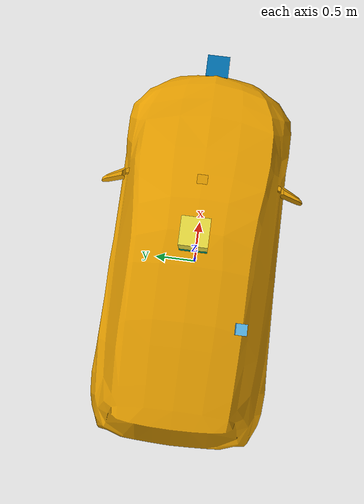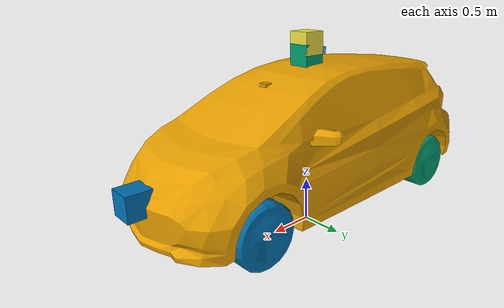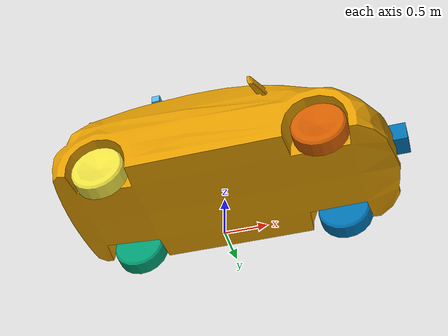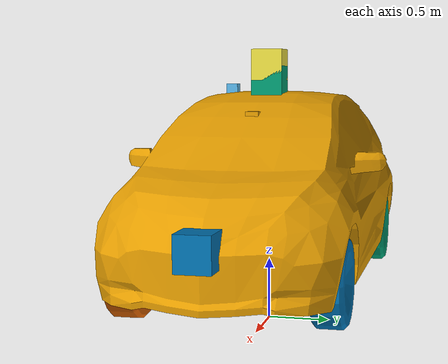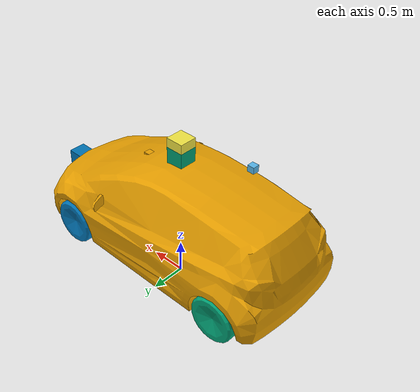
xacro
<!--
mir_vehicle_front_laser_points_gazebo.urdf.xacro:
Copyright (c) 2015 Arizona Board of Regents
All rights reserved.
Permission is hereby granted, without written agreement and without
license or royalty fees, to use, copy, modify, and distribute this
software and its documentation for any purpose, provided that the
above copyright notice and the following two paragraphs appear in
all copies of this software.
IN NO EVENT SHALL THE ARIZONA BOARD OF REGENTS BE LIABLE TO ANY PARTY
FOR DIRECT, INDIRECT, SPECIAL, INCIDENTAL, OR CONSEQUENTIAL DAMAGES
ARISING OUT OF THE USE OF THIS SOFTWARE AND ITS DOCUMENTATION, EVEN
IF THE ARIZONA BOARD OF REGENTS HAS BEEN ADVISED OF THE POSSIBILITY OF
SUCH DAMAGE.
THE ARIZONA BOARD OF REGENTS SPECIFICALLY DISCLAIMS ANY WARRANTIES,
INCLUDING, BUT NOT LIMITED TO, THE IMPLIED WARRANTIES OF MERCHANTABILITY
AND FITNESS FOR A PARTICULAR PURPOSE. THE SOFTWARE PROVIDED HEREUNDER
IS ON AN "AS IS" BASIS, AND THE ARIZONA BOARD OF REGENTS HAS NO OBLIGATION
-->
<?xml version="1.0"?>
<robot xmlns:xacro="http://www.ros.org/wiki/xacro" name="bulldogbolt">

<arg name="robot_name" default="bulldogbolt" />

<!-- Necessary includes: Properties -->
<xacro:include filename="$(find mir_vehicle_description)/urdf/bulldogbolt/properties.urdf.xacro"/>

<!-- Necessary includes -->
<xacro:include filename="$(find mir_vehicle_description)/urdf/bulldogbolt/structure.urdf.xacro" />

<!-- Bolt-on sensors go here -->
<xacro:include filename="$(find mir_vehicle_description)/urdf/$(arg robot_name)/sensors.urdf.xacro" />

<xacro:include filename="$(find mir_vehicle_description)/urdf/mir_vehicle_gazebo.urdf.xacro" />

</robot>

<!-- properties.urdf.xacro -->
<robot xmlns:xacro="http://www.ros.org/wiki/xacro"> <!-- name="properties" -->

<xacro:arg name="camera_left" default="true"/>
<xacro:arg name="camera_right" default="true"/>
<xacro:arg name="velodyne_points" default="true"/>
<xacro:arg name="front_laser_points" default="true"/>

<xacro:property name="PI" value="3.1415926835897931"/>
<xacro:property name="base_height" value="1.1159"/>
<xacro:property name="base_mass" value="1562"/>
<xacro:property name="base_mass_ixx" value="566"/>
<xacro:property name="base_mass_iyy" value="1880"/>
<xacro:property name="base_mass_izz" value="2045"/>
<xacro:property name="base_mass_ixz" value="48"/>
<xacro:property name="tyre_x" value="1.30"/>
<xacro:property name="tyre_y" value="0.765"/>
<xacro:property name="tyre_length" value="0.215"/>
<xacro:property name="tyre_r" value="0.66"/>
<xacro:property name="tyre_radius" value="0.3235"/>
<xacro:property name="tyre_mass" value="10"/>
<xacro:property name="tyre_mass_ixx" value="0.305583"/>
<xacro:property name="tyre_mass_iyy" value="0.305583"/>
<xacro:property name="tyre_mass_izz" value="0.5445"/>
<xacro:property name="car_height" value="1.6"/>
<xacro:property name="car_to_bumper" value="2.085"/>
<xacro:property name="front_bumper_height" value="${car_height/2}"/>
<xacro:property name="sensor_box" value="0.25"/>
<xacro:property name="sensor_box2" value="0.31"/>
<xacro:property name="camera_box" value="0.1"/>
<xacro:property name="tyre_height" value="-0.696"/>
<xacro:property name="str_length" value="0.01"/>
<xacro:property name="str_radius" value="0.1"/>
<xacro:property name="str_angle" value="0.6"/>
<xacro:property name="car_width" value="1.3"/>
<xacro:property name="front_laser_points" value="$(arg front_laser_points)"/>
<xacro:property name="velodyne_points" value="$(arg velodyne_points)"/>
<xacro:property name="camera_right" value="$(arg camera_right)"/>
<xacro:property name="camera_left" value="$(arg camera_left)"/>
<xacro:property name="tyre_origin">
    <origin xyz="0 0 0" rpy="${PI/2} 0 0"/>
</xacro:property>

</robot>

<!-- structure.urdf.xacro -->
<robot xmlns:xacro="http://www.ros.org/wiki/xacro"> <!-- name="structure" -->

<xacro:arg name="robot_name" default="bulldogbolt"/>

<!-- Car Body -->

<link name="base_link">
    <collision>
        <origin xyz="0 0 ${base_height}" rpy="0 0 0"/>
        <geometry>
            <box size="2.62 ${car_width} ${car_height}"/>
        </geometry>
    </collision>
    <visual>
        <!-- origin xyz="-0.25 0 ${base_height + 0.05}" rpy="0 0 0"/ -->
        <origin xyz="0.05 0 0.3235" rpy="1.570796 0 1.570796"/>
        <geometry>
            <!-- mesh filename="package://mir_vehicle/meshes/ford_escape_no_wheels_2.dae"/ -->
            <mesh filename="package://mir_vehicle_description/meshes/$(arg robot_name)/body.dae" scale="0.0383 0.0383 0.0383" />
        </geometry>
    </visual>
</link>

<joint name="inertial_joint" type="fixed">
    <parent link="base_link"/>
    <child link="main_mass"/>
    <origin xyz="0 0 0" rpy="0 0 0"/>
</joint>

<link name="main_mass" type="fixed">
    <parent link="inertial_joint"/>
    <inertial>
        <origin xyz="0 0 ${base_height}" rpy="0 0 0"/>
        <mass value="${base_mass}"/>
        <inertia
            ixx="${base_mass_ixx}"  ixy="0.000000" ixz="${base_mass_ixz}"
            iyy="${base_mass_iyy}" iyz="0.000000"
            izz="${base_mass_izz}"/>
    </inertial>
</link>

<!-- Wheels -->

<!-- Back Left Wheel -->

<joint name="back_left_wheel_joint" type="continuous">
    <parent link="base_link"/>
    <child link="back_left_wheel_link"/>
    <origin xyz="${-tyre_x} ${tyre_y} 0.608" rpy="0 0 0"/>
    <axis xyz="0 1 0"/>
    <dynamics damping="0.1"/>
    <limit effort="10000" velocity="100" />
    <joint_properties damping="0.0" friction="0.0" />
</joint>

<link name="back_left_wheel_link">
    <collision>
        <xacro:insert_block name="tyre_origin"/>
        <geometry>
            <cylinder length="${tyre_length}" radius="${tyre_radius}"/>
        </geometry>
    </collision>

    <visual>
        <origin xyz="-0.3065 -0.765 1.372" rpy="0 0 ${-PI/2}"/>
        <geometry>
            <mesh filename="package://mir_vehicle_description/meshes/$(arg robot_name)/wheel.dae" scale="0.0383 0.0383 0.0383"/>
        </geometry>
    </visual>

    <inertial>
        <origin xyz="0 0 0" rpy="0 0 0"/>
        <mass value="${tyre_mass}"/>
        <inertia
            ixx="${tyre_mass_ixx}"  ixy="0.000000"  ixz="0.000000"
            iyy="${tyre_mass_iyy}"  iyz="0.000000"
            izz="${tyre_mass_izz}"/>
    </inertial>
</link>

<!-- Back Right Wheel -->

<joint name="back_right_wheel_joint" type="continuous">
    <parent link="base_link"/>
    <child link="back_right_wheel_link"/>
    <origin xyz="${-tyre_x} ${-tyre_y} 0.608" rpy="0 0 0"/>
    <axis xyz="0 1 0"/>
    <dynamics damping="0.1"/>
    <limit effort="10000" velocity="100" />
    <joint_properties damping="0.0" friction="0.0" />
</joint>

<link name="back_right_wheel_link">
    <collision>
        <xacro:insert_block name="tyre_origin"/>
        <geometry>
            <cylinder length="${tyre_length}" radius="${tyre_radius}"/>
        </geometry>
    </collision>

    <visual>
        <origin xyz="0.3065 0.765 1.372" rpy="0 0 ${PI/2}"/>
        <geometry>
            <mesh filename="package://mir_vehicle_description/meshes/$(arg robot_name)/wheel.dae" scale="0.0383 0.0383 0.0383"/>
        </geometry>
    </visual>

    <inertial>
        <origin xyz="0 0 0" rpy="0 0 0"/>
        <mass value="${tyre_mass}"/>
        <inertia
            ixx="${tyre_mass_ixx}"  ixy="0.000000"  ixz="0.000000"
            iyy="${tyre_mass_iyy}"  iyz="0.000000"
            izz="${tyre_mass_izz}"/>
    </inertial>
</link>

<!-- Front Left Wheel -->

<joint name="front_left_wheel_joint" type="continuous">
    <parent link="front_left_steering_link"/>
    <child link="front_left_wheel_link"/>
    <origin xyz="0 ${str_length/2 + tyre_length/2} 0" rpy="0 0 0"/>
    <axis xyz="0 1 0"/>

    <dynamics damping="0.1"/>
    <limit effort="10000" velocity="100" />
    <joint_properties damping="0.0" friction="0.0" />
</joint>

<link name="front_left_wheel_link">
    <!-- ?? parent link="front_left_wheel_joint"/ -->
    <collision>
        <origin xyz="0 0 0" rpy="${PI/2} 0 0"/>
        <geometry>
             <cylinder length="${tyre_length}" radius="${tyre_radius}"/>
        </geometry>
    </collision>

    <visual>
        <origin xyz="-0.3065 -0.765 1.372" rpy="0 0 ${-PI/2}"/>
        <geometry>
            <mesh filename="package://mir_vehicle_description/meshes/$(arg robot_name)/wheel.dae" scale="0.0383 0.0383 0.0383"/>
        </geometry>
     </visual>

    <inertial>
        <origin xyz="0 0 0" rpy="0 0 0"/>
        <mass value="${tyre_mass}"/>
        <inertia
            ixx="${tyre_mass_ixx}"  ixy="0.000000"  ixz="0.000000"
            iyy="${tyre_mass_iyy}"  iyz="0.000000"
            izz="${tyre_mass_izz}"/>
    </inertial>
</link>

<!-- Front Right Wheel -->

<joint name="front_right_wheel_joint" type="continuous">
    <parent link="front_right_steering_link"/>
    <child link="front_right_wheel_link"/>
    <origin xyz="0 ${-str_length/2 - tyre_length/2} 0" rpy="0 0 0"/>
    <axis xyz="0 1 0"/>
    <dynamics damping="0.1"/>
    <limit effort="10000" velocity="100" />
    <joint_properties damping="0.0" friction="0.0" />
</joint>

<link name="front_right_wheel_link">
    <collision>
        <xacro:insert_block name="tyre_origin"/>
        <geometry>
            <cylinder length="${tyre_length}" radius="${tyre_radius}"/>
        </geometry>
    </collision>

    <visual>
        <origin xyz="0.3065 0.765 1.372" rpy="0 0 ${PI/2}"/>
        <geometry>
            <mesh filename="package://mir_vehicle_description/meshes/$(arg robot_name)/wheel.dae" scale="0.0383 0.0383 0.0383"/>
        </geometry>
    </visual>

    <inertial>
        <origin xyz="0 0 0" rpy="0 0 0"/>
        <mass value="${tyre_mass}"/>
    <inertia
        ixx="${tyre_mass_ixx}"  ixy="0.000000"  ixz="0.000000"
        iyy="${tyre_mass_iyy}"  iyz="0.000000"
        izz="${tyre_mass_izz}"/>
    </inertial>
</link>

<!-- Front Left Steering -->

<joint name="front_left_steering_joint" type="revolute">
    <parent link="base_link"/>
    <child link="front_left_steering_link"/>
    <origin xyz="${tyre_x} ${car_width/2 + str_length/2} 0.608" rpy="0 0 0"/>
    <axis xyz="0 0 1"/>
    <limit effort="1000.0" lower="${-str_angle}" upper="${str_angle}" velocity="0.5"/>
</joint>

<link name="front_left_steering_link">
    <!-- ?? parent link="base_link"/ -->
    <collision>
        <xacro:insert_block name="tyre_origin"/>
        <geometry>
            <cylinder length="${str_length}" radius="${str_radius}"/>
        </geometry>
    </collision>

    <visual>
        <xacro:insert_block name="tyre_origin"/>
        <geometry>
            <cylinder length="${str_length}" radius="${str_radius}"/>
        </geometry>
    </visual>

    <inertial>
        <origin xyz="0 0 0" rpy="0 0 0"/>
        <mass value="10.00"/>
        <inertia
            ixx="0.4"  ixy="0.000000"  ixz="0.000000"
            iyy="0.6"  iyz="0.000000"
            izz="0.4"/>
    </inertial>
</link>

<!-- Front Right Steering -->

<joint name="front_right_steering_joint" type="revolute">
    <parent link="base_link"/>
    <child link="front_right_steering_link"/>
    <origin xyz="${tyre_x} ${-car_width/2 - str_length/2} 0.608" rpy="0 0 0"/>
    <axis xyz="0 0 1"/>
    <limit effort="1000.0" lower="${-str_angle}" upper="${str_angle}" velocity="0.5"/>
</joint>

<link name="front_right_steering_link">
    <collision>
        <xacro:insert_block name="tyre_origin"/>
        <geometry>
            <cylinder length="${str_length}" radius="${str_radius}"/>
        </geometry>
    </collision>

    <visual>
        <xacro:insert_block name="tyre_origin"/>
        <geometry>
            <cylinder length="${str_length}" radius="${str_radius}"/>
        </geometry>
    </visual>

    <inertial>
        <origin xyz="0 0 0" rpy="0 0 0"/>
        <mass value="10.00"/>
        <inertia
            ixx="0.4"  ixy="0.000000"  ixz="0.000000"
            iyy="0.6"  iyz="0.000000"
            izz="0.4"/>
    </inertial>
</link>

<!-- motors and transmissions for the wheels -->

<transmission name="tran1">
    <type>transmission_interface/SimpleTransmission</type>
    <!-- RWD -->
    <!--joint name="back_left_wheel_joint"-->
    <!-- FWD -->
    <joint name="front_left_wheel_joint">
        <hardwareInterface>VelocityJointInterface</hardwareInterface>
    </joint>
    <actuator name="motor1">
        <hardwareInterface>VelocityJointInterface</hardwareInterface>
        <mechanicalReduction>1</mechanicalReduction>
    </actuator>
</transmission>

<transmission name="tran2">
    <type>transmission_interface/SimpleTransmission</type>
    <!-- RWD -->
    <!--joint name="back_right_wheel_joint"-->
    <!-- FWD -->
    <joint name="front_right_wheel_joint">
        <hardwareInterface>VelocityJointInterface</hardwareInterface>
    </joint>
    <actuator name="motor2">
        <hardwareInterface>VelocityJointInterface</hardwareInterface>
        <mechanicalReduction>1</mechanicalReduction>
    </actuator>
</transmission>

<transmission name="rack_and_pinion_left">
    <type>transmission_interface/SimpleTransmission</type>
        <joint name="front_left_steering_joint">
        <hardwareInterface>PositionJointInterface</hardwareInterface>
    </joint>
    <actuator name="eps_left">
        <hardwareInterface>PositionJointInterface</hardwareInterface>
        <mechanicalReduction>1</mechanicalReduction>
    </actuator>
</transmission>

<transmission name="rack_and_pinion_right">
    <type>transmission_interface/SimpleTransmission</type>
        <joint name="front_right_steering_joint">
        <hardwareInterface>PositionJointInterface</hardwareInterface>
    </joint>
    <actuator name="eps_right">
        <hardwareInterface>PositionJointInterface</hardwareInterface>
        <mechanicalReduction>1</mechanicalReduction>
    </actuator>
</transmission>

</robot>

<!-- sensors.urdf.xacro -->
<robot xmlns:xacro="http://www.ros.org/wiki/xacro"> <!-- name="sensors" -->

<xacro:arg name="camera_left" default="true"/>
<xacro:arg name="camera_right" default="true"/>
<xacro:arg name="velodyne_points" default="true"/>
<xacro:arg name="front_laser_points" default="true"/>

<xacro:if value="${front_laser_points}">
    <xacro:include filename="$(find mir_vehicle_description)/urdf/mir_vehicle_front_laser_points_gazebo.urdf.xacro"/>
</xacro:if>

<xacro:if value="${velodyne_points}">
    <!-- You can pass parameters in order to change the max/min
        horizontal angles of the velodyne sensors. These are interpreted
        in the velodyne_points gazebo file -->
    <xacro:arg name="velodyne_min_angle" default="-0.4"/>
    <xacro:arg name="velodyne_max_angle" default="0.4"/>
    <xacro:property name="velodyne_min_angle" value="$(arg velodyne_min_angle)"/>
    <xacro:property name="velodyne_max_angle" value="$(arg velodyne_max_angle)"/>

    <xacro:include filename="$(find mir_vehicle_description)/urdf/mir_vehicle_velodyne_points_gazebo.urdf.xacro"/>
</xacro:if>

<xacro:if value="${camera_right}">
    <xacro:include filename="$(find mir_vehicle_description)/urdf/mir_vehicle_right_camera_gazebo.urdf.xacro"/>
</xacro:if>

<xacro:if value="${camera_left}">
    <xacro:include filename="$(find mir_vehicle_description)/urdf/mir_vehicle_left_camera_gazebo.urdf.xacro"/>
</xacro:if>

!-- ********************************************************************** -->
<!-- Sensors -->

<!-- Left Camera-->

<joint name="camera_left_joint" type="fixed">
    <origin xyz="0.58 0 ${0.595 + camera_box/2 + 1.05}" rpy="0 0 0"/>
    <axis xyz="0 0 1"/>
    <parent link="base_link"/>
    <child link="camera_left_link"/>
</joint>

<link name="camera_left_link">
    <collision>
        <origin xyz="0 0 0" rpy="0 0 0"/>
        <geometry>
            <box size="${camera_box} ${camera_box} ${camera_box}"/>
        </geometry>
    </collision>

    <visual>
        <origin xyz="0 0 0" rpy="0 0 0"/>
        <geometry>
            <box size="${camera_box} ${camera_box} ${camera_box}"/>
        </geometry>
    </visual>

    <inertial>
        <mass value="1e-5" />
        <origin xyz="0 0 0" rpy="0 0 0"/>
        <inertia ixx="1e-6" ixy="0" ixz="0" iyy="1e-6" iyz="0" izz="1e-6" />
    </inertial>
</link>

<!-- Right Camera-->

<joint name="camera_right_joint" type="fixed">
    <origin xyz="-0.75 -0.5 ${0.595 + camera_box/2 + 1.25}" rpy="0 0 -${PI/2}"/>
    <axis xyz="0 0 1"/>
    <parent link="base_link"/>
    <child link="camera_right_link"/>
</joint>

<link name="camera_right_link">
    <collision>
        <origin xyz="0 0 0" rpy="0 0 0"/>
        <geometry>
            <box size="${camera_box} ${camera_box} ${camera_box}"/>
        </geometry>
    </collision>

    <visual>
        <origin xyz="0 0 0" rpy="0 0 0"/>
        <geometry>
            <box size="${camera_box} ${camera_box} ${camera_box}"/>
        </geometry>
    </visual>

    <inertial>
        <mass value="1e-5" />
        <origin xyz="0 0 0" rpy="0 0 0"/>
        <inertia ixx="1e-6" ixy="0" ixz="0" iyy="1e-6" iyz="0" izz="1e-6" />
    </inertial>
</link>

<!-- Camera Joint -->

<joint name="camera_joint" type="fixed">
    <origin xyz="0 0 ${0.595+ sensor_box/2 + 1.25}" rpy="0 0 0"/>
    <axis xyz="0 0 1"/>
    <parent link="base_link"/>
    <child link="camera_link"/>
</joint>

<link name="camera_link">
    <collision>
        <origin xyz="0 0 0" rpy="0 0 0"/>
        <geometry>
            <box size="${sensor_box} ${sensor_box} ${sensor_box}"/>
        </geometry>
    </collision>

    <visual>
        <origin xyz="0 0 0" rpy="0 0 0"/>
        <geometry>
            <box size="${sensor_box} ${sensor_box} ${sensor_box}"/>
        </geometry>
    </visual>

    <inertial>
        <mass value="1e-5" />
        <origin xyz="0 0 0" rpy="0 0 0"/>
        <inertia ixx="1e-6" ixy="0" ixz="0" iyy="1e-6" iyz="0" izz="1e-6" />
    </inertial>
</link>

<!--Velodyne LIDAR-->

<joint name="velodyne_joint" type="fixed">
    <origin xyz="0 0 ${sensor_box/2 + 0.01}" rpy="0 0 0"/>
    <axis xyz="0 0 1"/>
    <parent link="camera_link"/>
    <child link="velodyne_link"/>
</joint>

<link name="velodyne_link">
    <collision>
        <origin xyz="0 0 0" rpy="0 0 0"/>
        <geometry>
            <box size="${sensor_box} ${sensor_box} ${sensor_box}"/>
        </geometry>
    </collision>

    <visual>
        <origin xyz="0 0 0" rpy="0 0 0"/>
        <geometry>
            <box size="${sensor_box} ${sensor_box} ${sensor_box}"/>
        </geometry>
    </visual>

    <inertial>
        <mass value="1e-5" />
        <origin xyz="0 0 0" rpy="0 0 0"/>
        <inertia ixx="1e-6" ixy="0" ixz="0" iyy="1e-6" iyz="0" izz="1e-6" />
    </inertial>
</link>

<!-- SICKLIDAR-->

<joint name="front_laser_joint" type="fixed">
    <origin xyz="${car_to_bumper} 0 ${front_bumper_height + sensor_box/2 + 0.01}" rpy="0 0 0"/>
    <axis xyz="0 0 1"/>
    <parent link="base_link"/>
    <child link="front_laser_link"/>
</joint>

<link name="front_laser_link">
    <parent link="front_laser_joint"/>
    <collision>
        <origin xyz="0 0 0" rpy="0 0.0 0"/>
        <geometry>
            <box size="${sensor_box} ${sensor_box} ${sensor_box}"/>
        </geometry>
    </collision>

    <visual>
        <origin xyz="0 0 0" rpy="0 0 0"/>
        <geometry>
            <box size="${sensor_box} ${sensor_box} ${sensor_box}"/>
        </geometry>
    </visual>

    <inertial>
        <mass value="1e-5" />
        <origin xyz="0 0 0" rpy="0 0 0"/>
        <inertia ixx="1e-6" ixy="0" ixz="0" iyy="1e-6" iyz="0" izz="1e-6" />
    </inertial>
</link>

</robot>

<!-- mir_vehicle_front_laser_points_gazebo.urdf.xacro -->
<robot xmlns:xacro="http://www.ros.org/wiki/xacro" name="front_laser_points">
<arg name="robot_name" default="bulldogbolt" />

<gazebo reference="front_laser_link">
        <mu1>0.6</mu1>
        <mu2>0.5</mu2>
</gazebo>

<gazebo reference="front_laser_link">
        <sensor type="ray" name="sick_lms291">
              <pose>0 0 0 0 0 0</pose>
                   <visualize>true</visualize>
                    <update_rate>50</update_rate>
                       <ray>
                           <scan>
                                <horizontal>
                                       <samples>180</samples>
                                           <resolution>1</resolution>
                                            <min_angle>-1.57</min_angle>
                                            <max_angle>1.57</max_angle>
                                </horizontal>
                           </scan>
                           <range>
                                <min>1.5</min>
                                <!-- This range is in m, I hope... -->
                                <max>80.0</max>
                                <resolution>0.05</resolution>
                           </range>
                      </ray>
			   <plugin name="sick_lms291_controller" filename="libgazebo_ros_laser.so">
			      <topicName>/$(arg robot_name)/front_laser_points</topicName>
			      <frameName>front_laser_link</frameName>
			      <gaussianNoise>0.02</gaussianNoise>
                 </plugin>
      </sensor>
</gazebo>

</robot>

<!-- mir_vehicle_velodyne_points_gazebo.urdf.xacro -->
<robot xmlns:xacro="http://www.ros.org/wiki/xacro" name="velodyne_points">
<arg name="robot_name" default="bulldogbolt" />

<gazebo reference="velodyne_link">
   <mu1>0.6</mu1>
   <mu2>0.5</mu2>
</gazebo>

<gazebo reference="velodyne_link">
        <sensor type="ray" name="lidar_sensor">
              <pose>0 0 0 0 0 0</pose>
                   <visualize>false</visualize>
                    <update_rate>5</update_rate>
                       <ray>
                           <scan>
                                <horizontal>
                                       <samples>100</samples>
                                           <resolution>1</resolution>
                                            <min_angle>${velodyne_min_angle}</min_angle>
                                            <max_angle>${velodyne_max_angle}</max_angle>
                                </horizontal>
				<vertical>
					<samples>20</samples>
					<resolution>1</resolution>
					<min_angle>-0.034906585</min_angle>
					<max_angle>0.326</max_angle>
				</vertical>
                           </scan>
                           <range>
                                  <min>1</min>
                                  <max>50.0</max>
                                 <resolution>0.02</resolution>
                           </range>
                      </ray>
			   <plugin name="laser_controller" filename="libgazebo_ros_block_laser.so">
			      <frameName>velodyne_link</frameName>
			      <hokuyoMinIntensity>101</hokuyoMinIntensity>
			      <robotNamespace>/$(arg robot_name)</robotNamespace>
			      <topicName>lidar_points</topicName>
			      <gaussianNoise>0.02</gaussianNoise>
			      <updateRate>5</updateRate>
                 </plugin>
      </sensor>
</gazebo>

</robot>

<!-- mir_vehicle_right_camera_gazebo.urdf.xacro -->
<robot xmlns:xacro="http://www.ros.org/wiki/xacro" name="camera_right">
<arg name="robot_name" default="bulldogbolt" />

<!--right camera-->
<gazebo reference="camera_right_link">
   <mu1>0.6</mu1>
   <mu2>0.5</mu2>
</gazebo>

<gazebo reference="camera_right_link">
   <sensor type="camera" name="camera_right">
      <update_rate>30.0</update_rate>
      <camera name="right">
        <horizontal_fov>1.3962634</horizontal_fov>
        <image>
          <width>800</width>
          <height>800</height>
          <format>R8G8B8</format>
        </image>
        <clip>
          <near>0.02</near>
          <far>300</far>
        </clip>
        <noise>
          <type>gaussian</type>
           <mean>0.0</mean>
          <stddev>0.007</stddev>
        </noise>
      </camera>
      <plugin name="camera_right_controller" filename="libgazebo_ros_camera.so">
        <alwaysOn>true</alwaysOn>
        <updateRate>0.0</updateRate>
    	<robotNamespace>/$(arg robot_name)</robotNamespace>
        <cameraName>camera_right</cameraName>
        <imageTopicName>image_raw_right</imageTopicName>
        <cameraInfoTopicName>camera_right_info</cameraInfoTopicName>
        <frameName>camera_right_link</frameName>
        <hackBaseline>0.07</hackBaseline>
        <distortionK1>0.0</distortionK1>
        <distortionK2>0.0</distortionK2>
        <distortionK3>0.0</distortionK3>
        <distortionT1>0.0</distortionT1>
        <distortionT2>0.0</distortionT2>
      </plugin>
    </sensor>
</gazebo>

</robot>

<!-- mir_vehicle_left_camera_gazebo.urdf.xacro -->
<robot xmlns:xacro="http://www.ros.org/wiki/xacro" name="left_camera">
<arg name="robot_name" default="bulldogbolt" />

<!--left camera-->
<gazebo reference="camera_left_link">
   <mu1>0.6</mu1>
   <mu2>0.5</mu2>
</gazebo>

<gazebo reference="camera_left_link">
   <sensor type="camera" name="camera_left">
      <update_rate>30.0</update_rate>
      <camera name="left">
        <horizontal_fov>1.3962634</horizontal_fov>
        <image>
          <width>800</width>
          <height>800</height>
          <format>R8G8B8</format>
        </image>
        <clip>
          <near>0.02</near>
          <far>300</far>
        </clip>
        <noise>
          <type>gaussian</type>
           <mean>0.0</mean>
          <stddev>0.007</stddev>
        </noise>
      </camera>
      <plugin name="camera_left_controller" filename="libgazebo_ros_camera.so">
        <alwaysOn>true</alwaysOn>
        <updateRate>0.0</updateRate>
    	<robotNamespace>/$(arg robot_name)</robotNamespace>
        <cameraName>camera_left</cameraName>
        <imageTopicName>image_raw_left</imageTopicName>
        <cameraInfoTopicName>camera_left_info</cameraInfoTopicName>
        <frameName>camera_left_link</frameName>
        <hackBaseline>0.07</hackBaseline>
        <distortionK1>0.0</distortionK1>
        <distortionK2>0.0</distortionK2>
        <distortionK3>0.0</distortionK3>
        <distortionT1>0.0</distortionT1>
        <distortionT2>0.0</distortionT2>
      </plugin>
    </sensor>
</gazebo>

</robot>
